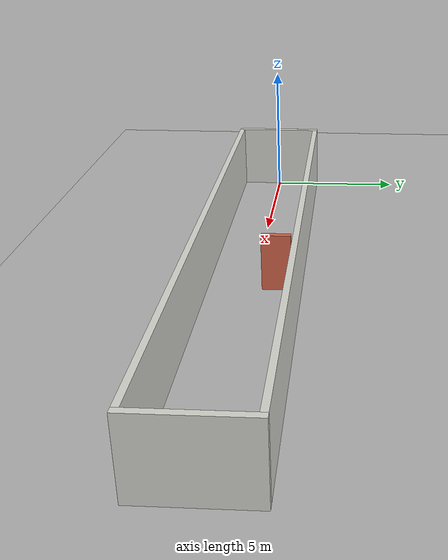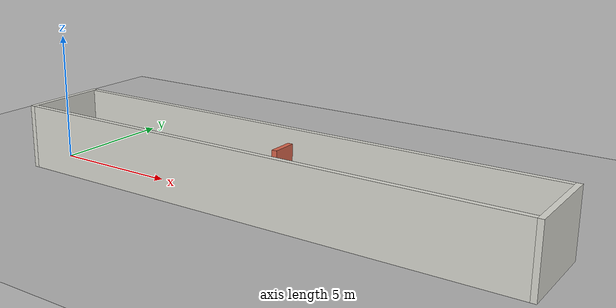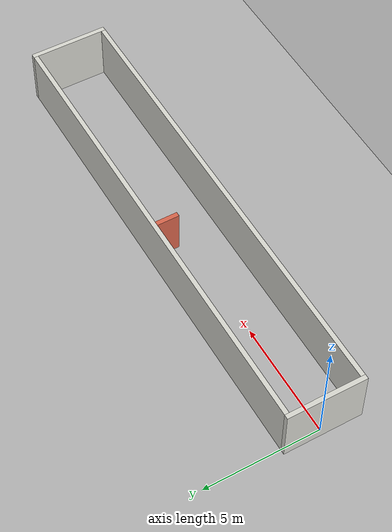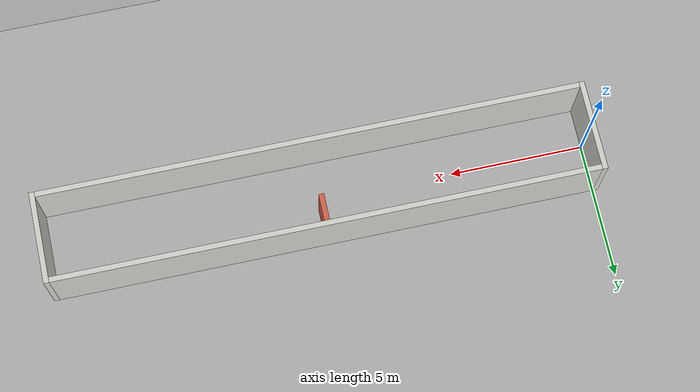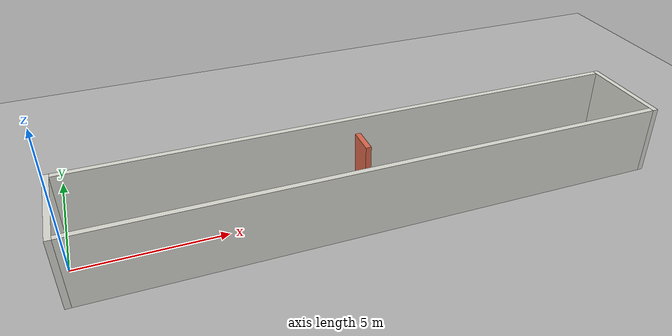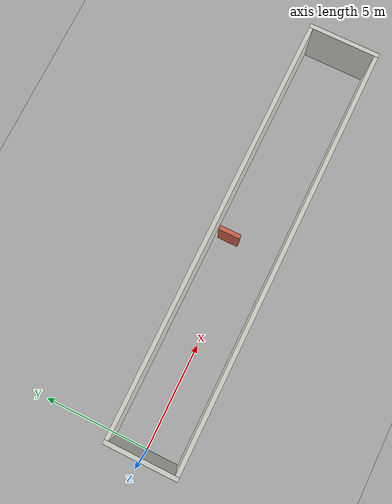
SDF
<?xml version="1.0" ?>
<sdf version="1.9">
  <world name="construction_site">

    <physics name="1ms" type="ignored">
      <max_step_size>0.001</max_step_size>
      <real_time_factor>1.0</real_time_factor>
    </physics>

    <!-- Core systems -->
    <plugin filename="gz-sim-physics-system"
            name="gz::sim::systems::Physics"/>
    <plugin filename="gz-sim-scene-broadcaster-system"
            name="gz::sim::systems::SceneBroadcaster"/>
    <plugin filename="gz-sim-user-commands-system"
            name="gz::sim::systems::UserCommands"/>
    <!-- Sensors system renders LiDAR/cameras. force_headless_rendering lets it
         run without a display (WSL2/headless). -->
    <plugin filename="gz-sim-sensors-system"
            name="gz::sim::systems::Sensors">
      <render_engine>ogre2</render_engine>
    </plugin>
    <plugin filename="gz-sim-imu-system"
            name="gz::sim::systems::Imu"/>

    <light type="directional" name="sun">
      <cast_shadows>true</cast_shadows>
      <pose>0 0 10 0 0 0</pose>
      <diffuse>1 1 1 1</diffuse>
      <specular>0.2 0.2 0.2 1</specular>
      <direction>-0.3 0.2 -1</direction>
    </light>

    <!-- Ground -->
    <model name="ground_plane">
      <static>true</static>
      <link name="link">
        <collision name="collision">
          <geometry><plane><normal>0 0 1</normal><size>100 100</size></plane></geometry>
        </collision>
        <visual name="visual">
          <geometry><plane><normal>0 0 1</normal><size>100 100</size></plane></geometry>
          <material>
            <ambient>0.6 0.6 0.6 1</ambient>
            <diffuse>0.7 0.7 0.7 1</diffuse>
          </material>
        </visual>
      </link>
    </model>

    <!-- Corridor: two long walls + two end caps, all static.
         Inner faces at y = +/- 1.5 (wall thickness 0.2, centered at +/- 1.6). -->
    <model name="corridor">
      <static>true</static>

      <link name="left_wall">
        <pose>10 1.6 1.25 0 0 0</pose>
        <collision name="c"><geometry><box><size>20 0.2 2.5</size></box></geometry></collision>
        <visual name="v"><geometry><box><size>20 0.2 2.5</size></box></geometry>
          <material><ambient>0.8 0.8 0.78 1</ambient><diffuse>0.85 0.85 0.82 1</diffuse></material>
        </visual>
      </link>

      <link name="right_wall">
        <pose>10 -1.6 1.25 0 0 0</pose>
        <collision name="c"><geometry><box><size>20 0.2 2.5</size></box></geometry></collision>
        <visual name="v"><geometry><box><size>20 0.2 2.5</size></box></geometry>
          <material><ambient>0.8 0.8 0.78 1</ambient><diffuse>0.85 0.85 0.82 1</diffuse></material>
        </visual>
      </link>

      <link name="end_near">
        <pose>-0.1 0 1.25 0 0 0</pose>
        <collision name="c"><geometry><box><size>0.2 3.4 2.5</size></box></geometry></collision>
        <visual name="v"><geometry><box><size>0.2 3.4 2.5</size></box></geometry>
          <material><ambient>0.8 0.8 0.78 1</ambient><diffuse>0.85 0.85 0.82 1</diffuse></material>
        </visual>
      </link>

      <link name="end_far">
        <pose>20.1 0 1.25 0 0 0</pose>
        <collision name="c"><geometry><box><size>0.2 3.4 2.5</size></box></geometry></collision>
        <visual name="v"><geometry><box><size>0.2 3.4 2.5</size></box></geometry>
          <material><ambient>0.8 0.8 0.78 1</ambient><diffuse>0.85 0.85 0.82 1</diffuse></material>
        </visual>
      </link>
    </model>

    <!-- Shifting wall panel: large vertical slab on a world-anchored prismatic
         Y joint. Starts at y = 0.85; commanded to y = -0.65 at t=15 s. -->
    <model name="shifting_panel">
      <pose>10 0.85 1.0 0 0 0</pose>
      <link name="panel">
        <inertial>
          <mass>20.0</mass>
          <inertia><ixx>7.0</ixx><iyy>6.8</iyy><izz>1.8</izz>
                   <ixy>0</ixy><ixz>0</ixz><iyz>0</iyz></inertia>
        </inertial>
        <collision name="c"><geometry><box><size>0.2 1.0 2.0</size></box></geometry></collision>
        <visual name="v"><geometry><box><size>0.2 1.0 2.0</size></box></geometry>
          <material><ambient>0.75 0.35 0.25 1</ambient><diffuse>0.85 0.4 0.3 1</diffuse></material>
        </visual>
      </link>

      <joint name="slide" type="prismatic">
        <parent>world</parent>
        <child>panel</child>
        <axis>
          <xyz>0 1 0</xyz>
          <limit><lower>-2.0</lower><upper>2.0</upper></limit>
          <dynamics><damping>50.0</damping></dynamics>
        </axis>
      </joint>

      <!-- Position controller: ROS publishes a target on /panel/cmd_pos.
           Target 0 holds start pose; target -1.5 slides it across. -->
      <plugin filename="gz-sim-joint-position-controller-system"
              name="gz::sim::systems::JointPositionController">
        <joint_name>slide</joint_name>
        <topic>/panel/cmd_pos</topic>
        <p_gain>2000.0</p_gain>
        <i_gain>50.0</i_gain>
        <d_gain>300.0</d_gain>
        <cmd_max>100000</cmd_max>
        <cmd_min>-100000</cmd_min>
      </plugin>
    </model>

  </world>
</sdf>
